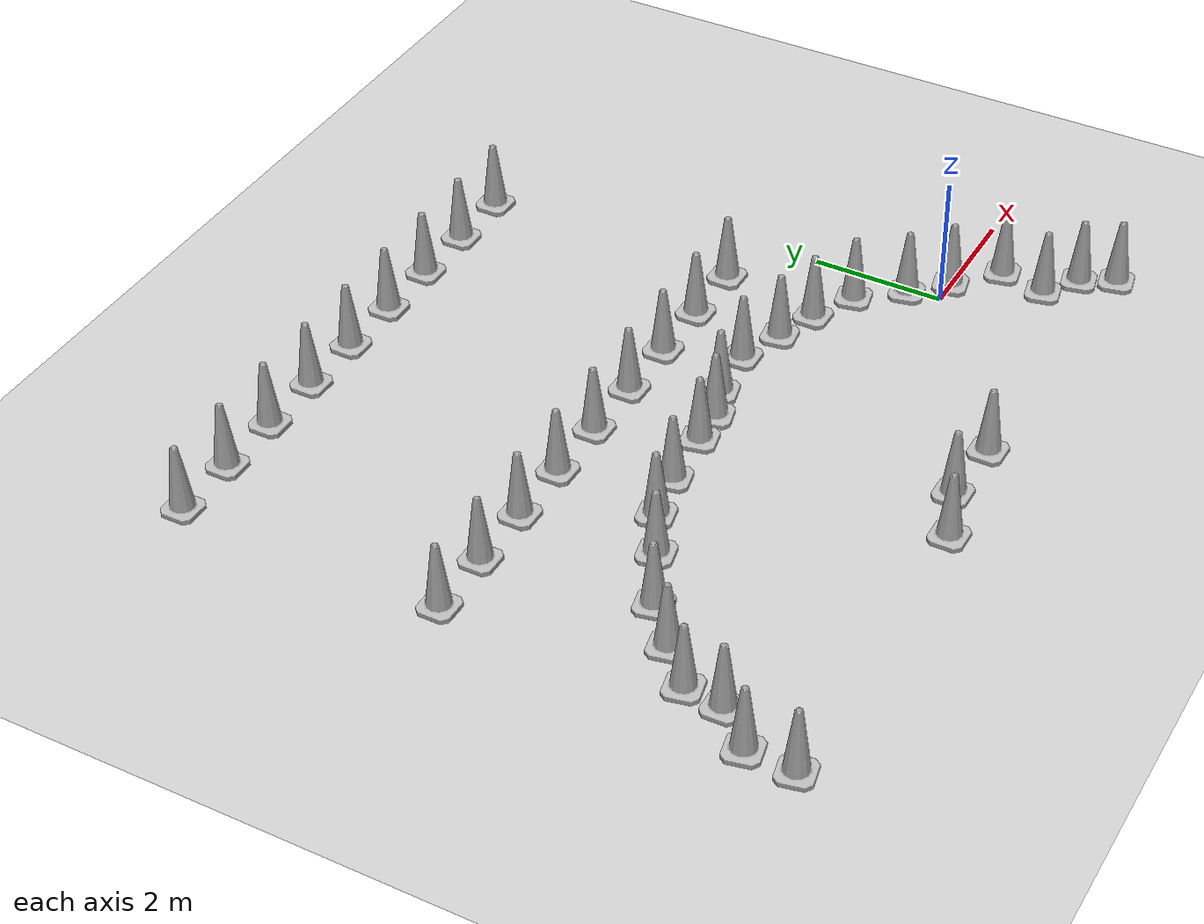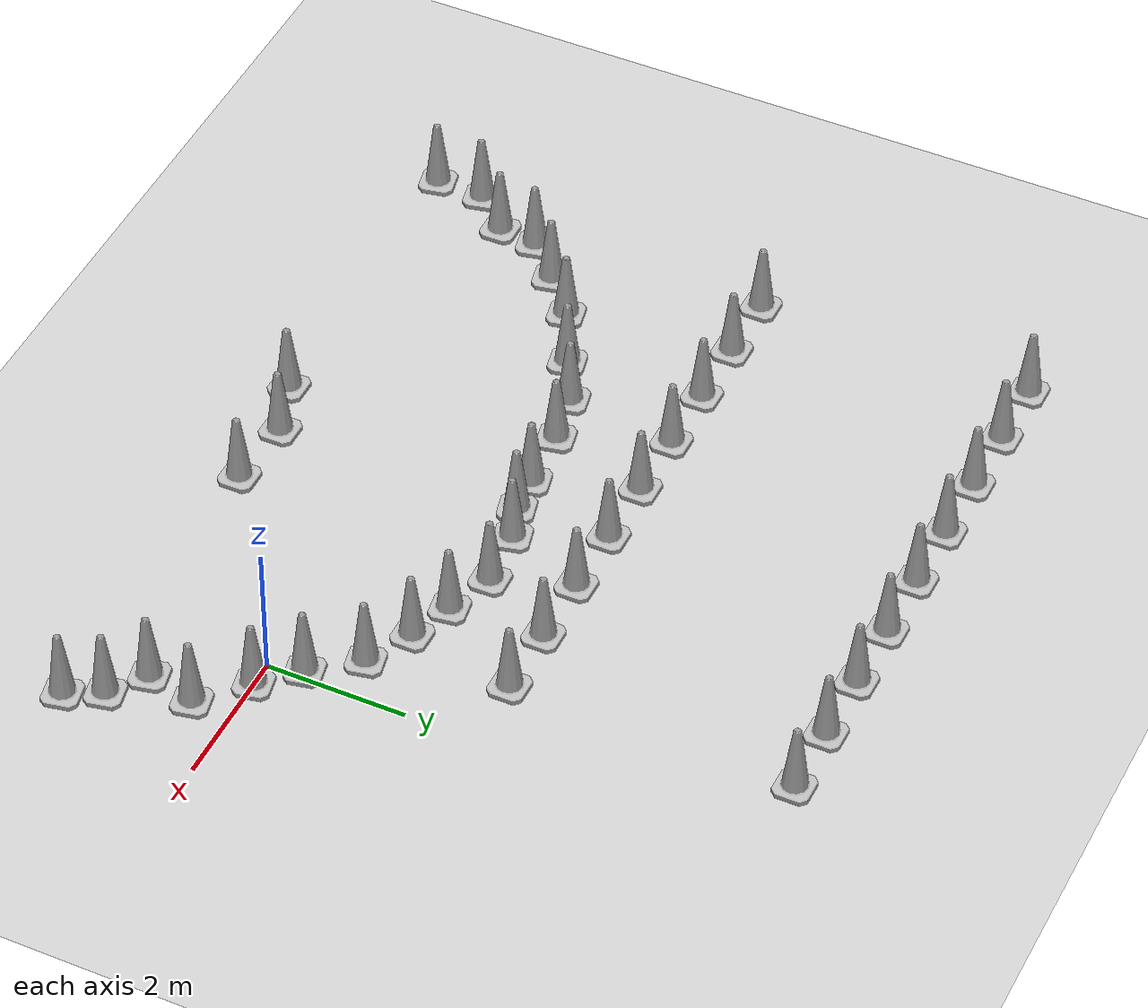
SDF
<sdf version="1.7">
 <world name="empty">
  <model name="ground_plane">
   <static>1</static>
   <link name="link">
    <collision name="collision">
     <geometry><plane><normal>0 0 1</normal><size>100 100</size></plane></geometry>
     <surface>
      <contact><collide_bitmask>65535</collide_bitmask></contact>
      <friction><ode><mu>100</mu><mu2>50</mu2></ode></friction>
     </surface>
    </collision>
    <visual name="visual">
     <cast_shadows>0</cast_shadows>
     <geometry><plane><normal>0 0 1</normal><size>100 100</size></plane></geometry>
     <material>
      <script><uri>file://media/materials/scripts/gazebo.material</uri><name>Gazebo/Grey</name></script>
     </material>
    </visual>
   </link>
  </model>
  <model name="Construction Cone">
   <link name="link">
    <collision name="collision">
     <geometry>
      <mesh><scale>10 10 10</scale><uri>model://construction_cone/meshes/construction_cone.dae</uri></mesh>
     </geometry>
    </collision>
    <visual name="visual">
     <geometry>
      <mesh><scale>10 10 10</scale><uri>model://construction_cone/meshes/construction_cone.dae</uri></mesh>
     </geometry>
    </visual>
    <inertial>
     <inertia><ixx>1</ixx><ixy>0</ixy><ixz>0</ixz><iyy>1</iyy><iyz>0</iyz><izz>1</izz></inertia>
     <mass>1</mass>
    </inertial>
   </link>
   <pose>-9 7 -0 0 -1e-06 0</pose>
  </model>
  <model name="Construction Cone_clone">
   <link name="link">
    <collision name="collision">
     <geometry>
      <mesh><scale>10 10 10</scale><uri>model://construction_cone/meshes/construction_cone.dae</uri></mesh>
     </geometry>
    </collision>
    <visual name="visual">
     <geometry>
      <mesh><scale>10 10 10</scale><uri>model://construction_cone/meshes/construction_cone.dae</uri></mesh>
     </geometry>
    </visual>
    <inertial>
     <inertia><ixx>1</ixx><ixy>0</ixy><ixz>0</ixz><iyy>1</iyy><iyz>0</iyz><izz>1</izz></inertia>
     <mass>1</mass>
    </inertial>
   </link>
   <pose>-9 3 -0 0 -1e-06 0</pose>
  </model>
  <model name="Construction Cone_clone_0">
   <link name="link">
    <collision name="collision">
     <geometry>
      <mesh><scale>10 10 10</scale><uri>model://construction_cone/meshes/construction_cone.dae</uri></mesh>
     </geometry>
    </collision>
    <visual name="visual">
     <geometry>
      <mesh><scale>10 10 10</scale><uri>model://construction_cone/meshes/construction_cone.dae</uri></mesh>
     </geometry>
    </visual>
    <inertial>
     <inertia><ixx>1</ixx><ixy>0</ixy><ixz>0</ixz><iyy>1</iyy><iyz>0</iyz><izz>1</izz></inertia>
     <mass>1</mass>
    </inertial>
   </link>
   <pose>-8 7 -0 0 -1e-06 0</pose>
  </model>
  <model name="Construction Cone_clone_1">
   <link name="link">
    <collision name="collision">
     <geometry>
      <mesh><scale>10 10 10</scale><uri>model://construction_cone/meshes/construction_cone.dae</uri></mesh>
     </geometry>
    </collision>
    <visual name="visual">
     <geometry>
      <mesh><scale>10 10 10</scale><uri>model://construction_cone/meshes/construction_cone.dae</uri></mesh>
     </geometry>
    </visual>
    <inertial>
     <inertia><ixx>1</ixx><ixy>0</ixy><ixz>0</ixz><iyy>1</iyy><iyz>0</iyz><izz>1</izz></inertia>
     <mass>1</mass>
    </inertial>
   </link>
   <pose>-7 7 -0 0 -1e-06 0</pose>
  </model>
  <model name="Construction Cone_clone_3">
   <link name="link">
    <collision name="collision">
     <geometry>
      <mesh><scale>10 10 10</scale><uri>model://construction_cone/meshes/construction_cone.dae</uri></mesh>
     </geometry>
    </collision>
    <visual name="visual">
     <geometry>
      <mesh><scale>10 10 10</scale><uri>model://construction_cone/meshes/construction_cone.dae</uri></mesh>
     </geometry>
    </visual>
    <inertial>
     <inertia><ixx>1</ixx><ixy>0</ixy><ixz>0</ixz><iyy>1</iyy><iyz>0</iyz><izz>1</izz></inertia>
     <mass>1</mass>
    </inertial>
   </link>
   <pose>-8 3 -0 0 -1e-06 0</pose>
  </model>
  <model name="Construction Cone_clone_7">
   <link name="link">
    <collision name="collision">
     <geometry>
      <mesh><scale>10 10 10</scale><uri>model://construction_cone/meshes/construction_cone.dae</uri></mesh>
     </geometry>
    </collision>
    <visual name="visual">
     <geometry>
      <mesh><scale>10 10 10</scale><uri>model://construction_cone/meshes/construction_cone.dae</uri></mesh>
     </geometry>
    </visual>
    <inertial>
     <inertia><ixx>1</ixx><ixy>0</ixy><ixz>0</ixz><iyy>1</iyy><iyz>0</iyz><izz>1</izz></inertia>
     <mass>1</mass>
    </inertial>
   </link>
   <pose>-6 7 -1e-05 -1e-06 0 0</pose>
  </model>
  <model name="Construction Cone_clone_8">
   <link name="link">
    <collision name="collision">
     <geometry>
      <mesh><scale>10 10 10</scale><uri>model://construction_cone/meshes/construction_cone.dae</uri></mesh>
     </geometry>
    </collision>
    <visual name="visual">
     <geometry>
      <mesh><scale>10 10 10</scale><uri>model://construction_cone/meshes/construction_cone.dae</uri></mesh>
     </geometry>
    </visual>
    <inertial>
     <inertia><ixx>1</ixx><ixy>0</ixy><ixz>0</ixz><iyy>1</iyy><iyz>0</iyz><izz>1</izz></inertia>
     <mass>1</mass>
    </inertial>
   </link>
   <pose>-5 7 -0 0 -1e-06 0</pose>
  </model>
  <model name="Construction Cone_clone_9">
   <link name="link">
    <collision name="collision">
     <geometry>
      <mesh><scale>10 10 10</scale><uri>model://construction_cone/meshes/construction_cone.dae</uri></mesh>
     </geometry>
    </collision>
    <visual name="visual">
     <geometry>
      <mesh><scale>10 10 10</scale><uri>model://construction_cone/meshes/construction_cone.dae</uri></mesh>
     </geometry>
    </visual>
    <inertial>
     <inertia><ixx>1</ixx><ixy>0</ixy><ixz>0</ixz><iyy>1</iyy><iyz>0</iyz><izz>1</izz></inertia>
     <mass>1</mass>
    </inertial>
   </link>
   <pose>-4 7 0 -1e-06 0 0</pose>
  </model>
  <model name="Construction Cone_clone_10">
   <link name="link">
    <collision name="collision">
     <geometry>
      <mesh><scale>10 10 10</scale><uri>model://construction_cone/meshes/construction_cone.dae</uri></mesh>
     </geometry>
    </collision>
    <visual name="visual">
     <geometry>
      <mesh><scale>10 10 10</scale><uri>model://construction_cone/meshes/construction_cone.dae</uri></mesh>
     </geometry>
    </visual>
    <inertial>
     <inertia><ixx>1</ixx><ixy>0</ixy><ixz>0</ixz><iyy>1</iyy><iyz>0</iyz><izz>1</izz></inertia>
     <mass>1</mass>
    </inertial>
   </link>
   <pose>-3 7 -0 0 -1e-06 0</pose>
  </model>
  <model name="Construction Cone_clone_11">
   <link name="link">
    <collision name="collision">
     <geometry>
      <mesh><scale>10 10 10</scale><uri>model://construction_cone/meshes/construction_cone.dae</uri></mesh>
     </geometry>
    </collision>
    <visual name="visual">
     <geometry>
      <mesh><scale>10 10 10</scale><uri>model://construction_cone/meshes/construction_cone.dae</uri></mesh>
     </geometry>
    </visual>
    <inertial>
     <inertia><ixx>1</ixx><ixy>0</ixy><ixz>0</ixz><iyy>1</iyy><iyz>0</iyz><izz>1</izz></inertia>
     <mass>1</mass>
    </inertial>
   </link>
   <pose>-3 3 -0 0 -1e-06 0</pose>
  </model>
  <model name="Construction Cone_clone_12">
   <link name="link">
    <collision name="collision">
     <geometry>
      <mesh><scale>10 10 10</scale><uri>model://construction_cone/meshes/construction_cone.dae</uri></mesh>
     </geometry>
    </collision>
    <visual name="visual">
     <geometry>
      <mesh><scale>10 10 10</scale><uri>model://construction_cone/meshes/construction_cone.dae</uri></mesh>
     </geometry>
    </visual>
    <inertial>
     <inertia><ixx>1</ixx><ixy>0</ixy><ixz>0</ixz><iyy>1</iyy><iyz>0</iyz><izz>1</izz></inertia>
     <mass>1</mass>
    </inertial>
   </link>
   <pose>-2 3 -0 0 -0 0</pose>
  </model>
  <model name="Construction Cone_clone_13">
   <link name="link">
    <collision name="collision">
     <geometry>
      <mesh><scale>10 10 10</scale><uri>model://construction_cone/meshes/construction_cone.dae</uri></mesh>
     </geometry>
    </collision>
    <visual name="visual">
     <geometry>
      <mesh><scale>10 10 10</scale><uri>model://construction_cone/meshes/construction_cone.dae</uri></mesh>
     </geometry>
    </visual>
    <inertial>
     <inertia><ixx>1</ixx><ixy>0</ixy><ixz>0</ixz><iyy>1</iyy><iyz>0</iyz><izz>1</izz></inertia>
     <mass>1</mass>
    </inertial>
   </link>
   <pose>-2 7 -0 0 -0 0</pose>
  </model>
  <model name="Construction Cone_clone_14">
   <link name="link">
    <collision name="collision">
     <geometry>
      <mesh><scale>10 10 10</scale><uri>model://construction_cone/meshes/construction_cone.dae</uri></mesh>
     </geometry>
    </collision>
    <visual name="visual">
     <geometry>
      <mesh><scale>10 10 10</scale><uri>model://construction_cone/meshes/construction_cone.dae</uri></mesh>
     </geometry>
    </visual>
    <inertial>
     <inertia><ixx>1</ixx><ixy>0</ixy><ixz>0</ixz><iyy>1</iyy><iyz>0</iyz><izz>1</izz></inertia>
     <mass>1</mass>
    </inertial>
   </link>
   <pose>-1 7 -0 0 -1e-06 0</pose>
  </model>
  <model name="Construction Cone_clone_15">
   <link name="link">
    <collision name="collision">
     <geometry>
      <mesh><scale>10 10 10</scale><uri>model://construction_cone/meshes/construction_cone.dae</uri></mesh>
     </geometry>
    </collision>
    <visual name="visual">
     <geometry>
      <mesh><scale>10 10 10</scale><uri>model://construction_cone/meshes/construction_cone.dae</uri></mesh>
     </geometry>
    </visual>
    <inertial>
     <inertia><ixx>1</ixx><ixy>0</ixy><ixz>0</ixz><iyy>1</iyy><iyz>0</iyz><izz>1</izz></inertia>
     <mass>1</mass>
    </inertial>
   </link>
   <pose>-1 3 -0 0 -1e-06 0</pose>
  </model>
  <model name="Construction Cone_clone_17">
   <link name="link">
    <collision name="collision">
     <geometry>
      <mesh><scale>10 10 10</scale><uri>model://construction_cone/meshes/construction_cone.dae</uri></mesh>
     </geometry>
    </collision>
    <visual name="visual">
     <geometry>
      <mesh><scale>10 10 10</scale><uri>model://construction_cone/meshes/construction_cone.dae</uri></mesh>
     </geometry>
    </visual>
    <inertial>
     <inertia><ixx>1</ixx><ixy>0</ixy><ixz>0</ixz><iyy>1</iyy><iyz>0</iyz><izz>1</izz></inertia>
     <mass>1</mass>
    </inertial>
   </link>
   <pose>-3.92107 -1.88779 -0 0 -0 0.002196</pose>
  </model>
  <model name="Construction Cone_clone_20">
   <link name="link">
    <collision name="collision">
     <geometry>
      <mesh><scale>10 10 10</scale><uri>model://construction_cone/meshes/construction_cone.dae</uri></mesh>
     </geometry>
    </collision>
    <visual name="visual">
     <geometry>
      <mesh><scale>10 10 10</scale><uri>model://construction_cone/meshes/construction_cone.dae</uri></mesh>
     </geometry>
    </visual>
    <inertial>
     <inertia><ixx>1</ixx><ixy>0</ixy><ixz>0</ixz><iyy>1</iyy><iyz>0</iyz><izz>1</izz></inertia>
     <mass>1</mass>
    </inertial>
   </link>
   <pose>-2.61076 1.92981 -0 -0 -1e-06 0.029847</pose>
  </model>
  <model name="Construction Cone_clone_33">
   <link name="link">
    <collision name="collision">
     <geometry>
      <mesh><scale>10 10 10</scale><uri>model://construction_cone/meshes/construction_cone.dae</uri></mesh>
     </geometry>
    </collision>
    <visual name="visual">
     <geometry>
      <mesh><scale>10 10 10</scale><uri>model://construction_cone/meshes/construction_cone.dae</uri></mesh>
     </geometry>
    </visual>
    <inertial>
     <inertia><ixx>1</ixx><ixy>0</ixy><ixz>0</ixz><iyy>1</iyy><iyz>0</iyz><izz>1</izz></inertia>
     <mass>1</mass>
    </inertial>
   </link>
   <pose>-1.91574 1.68243 -0 0 -1e-06 0.152894</pose>
  </model>
  <model name="Construction Cone_clone_35">
   <link name="link">
    <collision name="collision">
     <geometry>
      <mesh><scale>10 10 10</scale><uri>model://construction_cone/meshes/construction_cone.dae</uri></mesh>
     </geometry>
    </collision>
    <visual name="visual">
     <geometry>
      <mesh><scale>10 10 10</scale><uri>model://construction_cone/meshes/construction_cone.dae</uri></mesh>
     </geometry>
    </visual>
    <inertial>
     <inertia><ixx>1</ixx><ixy>0</ixy><ixz>0</ixz><iyy>1</iyy><iyz>0</iyz><izz>1</izz></inertia>
     <mass>1</mass>
    </inertial>
   </link>
   <pose>-1.27313 1.45906 -0 -0 -1e-06 0.000419</pose>
  </model>
  <model name="Construction Cone_clone_59">
   <link name="link">
    <collision name="collision">
     <geometry>
      <mesh><scale>10 10 10</scale><uri>model://construction_cone/meshes/construction_cone.dae</uri></mesh>
     </geometry>
    </collision>
    <visual name="visual">
     <geometry>
      <mesh><scale>10 10 10</scale><uri>model://construction_cone/meshes/construction_cone.dae</uri></mesh>
     </geometry>
    </visual>
    <inertial>
     <inertia><ixx>1</ixx><ixy>0</ixy><ixz>0</ixz><iyy>1</iyy><iyz>0</iyz><izz>1</izz></inertia>
     <mass>1</mass>
    </inertial>
   </link>
   <pose>-4.51183 1.61968 -0 -0 -1e-06 0.206225</pose>
  </model>
  <model name="Construction Cone_clone_61">
   <link name="link">
    <collision name="collision">
     <geometry>
      <mesh><scale>10 10 10</scale><uri>model://construction_cone/meshes/construction_cone.dae</uri></mesh>
     </geometry>
    </collision>
    <visual name="visual">
     <geometry>
      <mesh><scale>10 10 10</scale><uri>model://construction_cone/meshes/construction_cone.dae</uri></mesh>
     </geometry>
    </visual>
    <inertial>
     <inertia><ixx>1</ixx><ixy>0</ixy><ixz>0</ixz><iyy>1</iyy><iyz>0</iyz><izz>1</izz></inertia>
     <mass>1</mass>
    </inertial>
   </link>
   <pose>-2.89241 -1.9618 -0 -0 -0 -0</pose>
  </model>
  <model name="Construction Cone_clone_63">
   <link name="link">
    <collision name="collision">
     <geometry>
      <mesh><scale>10 10 10</scale><uri>model://construction_cone/meshes/construction_cone.dae</uri></mesh>
     </geometry>
    </collision>
    <visual name="visual">
     <geometry>
      <mesh><scale>10 10 10</scale><uri>model://construction_cone/meshes/construction_cone.dae</uri></mesh>
     </geometry>
    </visual>
    <inertial>
     <inertia><ixx>1</ixx><ixy>0</ixy><ixz>0</ixz><iyy>1</iyy><iyz>0</iyz><izz>1</izz></inertia>
     <mass>1</mass>
    </inertial>
   </link>
   <pose>-4.73181 -2.1814 -0 0 -1e-06 0.002576</pose>
  </model>
  <model name="Construction Cone_clone_59_clone">
   <link name="link">
    <collision name="collision">
     <geometry>
      <mesh><scale>10 10 10</scale><uri>model://construction_cone/meshes/construction_cone.dae</uri></mesh>
     </geometry>
    </collision>
    <visual name="visual">
     <geometry>
      <mesh><scale>10 10 10</scale><uri>model://construction_cone/meshes/construction_cone.dae</uri></mesh>
     </geometry>
    </visual>
    <inertial>
     <inertia><ixx>1</ixx><ixy>0</ixy><ixz>0</ixz><iyy>1</iyy><iyz>0</iyz><izz>1</izz></inertia>
     <mass>1</mass>
    </inertial>
   </link>
   <pose>-5.40428 1.55794 -8e-06 1e-06 -0 0.206225</pose>
  </model>
  <model name="Construction Cone_clone_59_clone_0">
   <link name="link">
    <collision name="collision">
     <geometry>
      <mesh><scale>10 10 10</scale><uri>model://construction_cone/meshes/construction_cone.dae</uri></mesh>
     </geometry>
    </collision>
    <visual name="visual">
     <geometry>
      <mesh><scale>10 10 10</scale><uri>model://construction_cone/meshes/construction_cone.dae</uri></mesh>
     </geometry>
    </visual>
    <inertial>
     <inertia><ixx>1</ixx><ixy>0</ixy><ixz>0</ixz><iyy>1</iyy><iyz>0</iyz><izz>1</izz></inertia>
     <mass>1</mass>
    </inertial>
   </link>
   <pose>-0.599827 1.12459 -0 -0 -1e-06 0.206225</pose>
  </model>
  <model name="Construction Cone_clone_59_clone_1">
   <link name="link">
    <collision name="collision">
     <geometry>
      <mesh><scale>10 10 10</scale><uri>model://construction_cone/meshes/construction_cone.dae</uri></mesh>
     </geometry>
    </collision>
    <visual name="visual">
     <geometry>
      <mesh><scale>10 10 10</scale><uri>model://construction_cone/meshes/construction_cone.dae</uri></mesh>
     </geometry>
    </visual>
    <inertial>
     <inertia><ixx>1</ixx><ixy>0</ixy><ixz>0</ixz><iyy>1</iyy><iyz>0</iyz><izz>1</izz></inertia>
     <mass>1</mass>
    </inertial>
   </link>
   <pose>-0.106114 0.495019 -1e-05 0 -0 0.206225</pose>
  </model>
  <model name="Construction Cone_clone_30_clone">
   <link name="link">
    <collision name="collision">
     <geometry>
      <mesh><scale>10 10 10</scale><uri>model://construction_cone/meshes/construction_cone.dae</uri></mesh>
     </geometry>
    </collision>
    <visual name="visual">
     <geometry>
      <mesh><scale>10 10 10</scale><uri>model://construction_cone/meshes/construction_cone.dae</uri></mesh>
     </geometry>
    </visual>
    <inertial>
     <inertia><ixx>1</ixx><ixy>0</ixy><ixz>0</ixz><iyy>1</iyy><iyz>0</iyz><izz>1</izz></inertia>
     <mass>1</mass>
    </inertial>
   </link>
   <pose>-8.88633 -0.991657 -0 0 -1e-06 0.015434</pose>
  </model>
  <model name="Construction Cone_clone_59_clone_clone">
   <link name="link">
    <collision name="collision">
     <geometry>
      <mesh><scale>10 10 10</scale><uri>model://construction_cone/meshes/construction_cone.dae</uri></mesh>
     </geometry>
    </collision>
    <visual name="visual">
     <geometry>
      <mesh><scale>10 10 10</scale><uri>model://construction_cone/meshes/construction_cone.dae</uri></mesh>
     </geometry>
    </visual>
    <inertial>
     <inertia><ixx>1</ixx><ixy>0</ixy><ixz>0</ixz><iyy>1</iyy><iyz>0</iyz><izz>1</izz></inertia>
     <mass>1</mass>
    </inertial>
   </link>
   <pose>-6.1573 1.40512 -0 -0 -1e-06 0.206225</pose>
  </model>
  <model name="Construction Cone_clone_59_clone_clone_0">
   <link name="link">
    <collision name="collision">
     <geometry>
      <mesh><scale>10 10 10</scale><uri>model://construction_cone/meshes/construction_cone.dae</uri></mesh>
     </geometry>
    </collision>
    <visual name="visual">
     <geometry>
      <mesh><scale>10 10 10</scale><uri>model://construction_cone/meshes/construction_cone.dae</uri></mesh>
     </geometry>
    </visual>
    <inertial>
     <inertia><ixx>1</ixx><ixy>0</ixy><ixz>0</ixz><iyy>1</iyy><iyz>0</iyz><izz>1</izz></inertia>
     <mass>1</mass>
    </inertial>
   </link>
   <pose>-6.82166 1.04752 -0 -0 -1e-06 0.206225</pose>
  </model>
  <model name="Construction Cone_clone_59_clone_clone_1">
   <link name="link">
    <collision name="collision">
     <geometry>
      <mesh><scale>10 10 10</scale><uri>model://construction_cone/meshes/construction_cone.dae</uri></mesh>
     </geometry>
    </collision>
    <visual name="visual">
     <geometry>
      <mesh><scale>10 10 10</scale><uri>model://construction_cone/meshes/construction_cone.dae</uri></mesh>
     </geometry>
    </visual>
    <inertial>
     <inertia><ixx>1</ixx><ixy>0</ixy><ixz>0</ixz><iyy>1</iyy><iyz>0</iyz><izz>1</izz></inertia>
     <mass>1</mass>
    </inertial>
   </link>
   <pose>-7.68992 0.613223 -0 -0 -1e-06 0.206225</pose>
  </model>
  <model name="Construction Cone_clone_59_clone_clone_2">
   <link name="link">
    <collision name="collision">
     <geometry>
      <mesh><scale>10 10 10</scale><uri>model://construction_cone/meshes/construction_cone.dae</uri></mesh>
     </geometry>
    </collision>
    <visual name="visual">
     <geometry>
      <mesh><scale>10 10 10</scale><uri>model://construction_cone/meshes/construction_cone.dae</uri></mesh>
     </geometry>
    </visual>
    <inertial>
     <inertia><ixx>1</ixx><ixy>0</ixy><ixz>0</ixz><iyy>1</iyy><iyz>0</iyz><izz>1</izz></inertia>
     <mass>1</mass>
    </inertial>
   </link>
   <pose>-8.27759 0.102404 -0 0 -0 0.206225</pose>
  </model>
  <model name="Construction Cone_clone_59_clone_clone_3">
   <link name="link">
    <collision name="collision">
     <geometry>
      <mesh><scale>10 10 10</scale><uri>model://construction_cone/meshes/construction_cone.dae</uri></mesh>
     </geometry>
    </collision>
    <visual name="visual">
     <geometry>
      <mesh><scale>10 10 10</scale><uri>model://construction_cone/meshes/construction_cone.dae</uri></mesh>
     </geometry>
    </visual>
    <inertial>
     <inertia><ixx>1</ixx><ixy>0</ixy><ixz>0</ixz><iyy>1</iyy><iyz>0</iyz><izz>1</izz></inertia>
     <mass>1</mass>
    </inertial>
   </link>
   <pose>-8.81392 -0.408497 -8e-06 1e-06 -0 0.206225</pose>
  </model>
  <model name="Construction Cone_clone_59_clone_clone_4">
   <link name="link">
    <collision name="collision">
     <geometry>
      <mesh><scale>10 10 10</scale><uri>model://construction_cone/meshes/construction_cone.dae</uri></mesh>
     </geometry>
    </collision>
    <visual name="visual">
     <geometry>
      <mesh><scale>10 10 10</scale><uri>model://construction_cone/meshes/construction_cone.dae</uri></mesh>
     </geometry>
    </visual>
    <inertial>
     <inertia><ixx>1</ixx><ixy>0</ixy><ixz>0</ixz><iyy>1</iyy><iyz>0</iyz><izz>1</izz></inertia>
     <mass>1</mass>
    </inertial>
   </link>
   <pose>-9.40143 -1.53258 -0 -0 -1e-06 0.206225</pose>
  </model>
  <model name="Construction Cone_clone_59_clone_clone_5">
   <link name="link">
    <collision name="collision">
     <geometry>
      <mesh><scale>10 10 10</scale><uri>model://construction_cone/meshes/construction_cone.dae</uri></mesh>
     </geometry>
    </collision>
    <visual name="visual">
     <geometry>
      <mesh><scale>10 10 10</scale><uri>model://construction_cone/meshes/construction_cone.dae</uri></mesh>
     </geometry>
    </visual>
    <inertial>
     <inertia><ixx>1</ixx><ixy>0</ixy><ixz>0</ixz><iyy>1</iyy><iyz>0</iyz><izz>1</izz></inertia>
     <mass>1</mass>
    </inertial>
   </link>
   <pose>-9.4271 -2.24779 -0 -0 -1e-06 0.206225</pose>
  </model>
  <model name="Construction Cone_clone_59_clone_clone_11">
   <link name="link">
    <collision name="collision">
     <geometry>
      <mesh><scale>10 10 10</scale><uri>model://construction_cone/meshes/construction_cone.dae</uri></mesh>
     </geometry>
    </collision>
    <visual name="visual">
     <geometry>
      <mesh><scale>10 10 10</scale><uri>model://construction_cone/meshes/construction_cone.dae</uri></mesh>
     </geometry>
    </visual>
    <inertial>
     <inertia><ixx>1</ixx><ixy>0</ixy><ixz>0</ixz><iyy>1</iyy><iyz>0</iyz><izz>1</izz></inertia>
     <mass>1</mass>
    </inertial>
   </link>
   <pose>1.58624 -2.13001 -0 0 -0 0.206225</pose>
  </model>
  <model name="Construction Cone_clone_59_clone_clone_12">
   <link name="link">
    <collision name="collision">
     <geometry>
      <mesh><scale>10 10 10</scale><uri>model://construction_cone/meshes/construction_cone.dae</uri></mesh>
     </geometry>
    </collision>
    <visual name="visual">
     <geometry>
      <mesh><scale>10 10 10</scale><uri>model://construction_cone/meshes/construction_cone.dae</uri></mesh>
     </geometry>
    </visual>
    <inertial>
     <inertia><ixx>1</ixx><ixy>0</ixy><ixz>0</ixz><iyy>1</iyy><iyz>0</iyz><izz>1</izz></inertia>
     <mass>1</mass>
    </inertial>
   </link>
   <pose>1.34409 -1.63494 -0 -0 -1e-06 0.207821</pose>
  </model>
  <model name="Construction Cone_clone_59_clone_clone_13">
   <link name="link">
    <collision name="collision">
     <geometry>
      <mesh><scale>10 10 10</scale><uri>model://construction_cone/meshes/construction_cone.dae</uri></mesh>
     </geometry>
    </collision>
    <visual name="visual">
     <geometry>
      <mesh><scale>10 10 10</scale><uri>model://construction_cone/meshes/construction_cone.dae</uri></mesh>
     </geometry>
    </visual>
    <inertial>
     <inertia><ixx>1</ixx><ixy>0</ixy><ixz>0</ixz><iyy>1</iyy><iyz>0</iyz><izz>1</izz></inertia>
     <mass>1</mass>
    </inertial>
   </link>
   <pose>0.835369 -1.2692 -0 -0 -1e-06 0.211317</pose>
  </model>
  <model name="Construction Cone_clone_59_clone_clone_15">
   <link name="link">
    <collision name="collision">
     <geometry>
      <mesh><scale>10 10 10</scale><uri>model://construction_cone/meshes/construction_cone.dae</uri></mesh>
     </geometry>
    </collision>
    <visual name="visual">
     <geometry>
      <mesh><scale>10 10 10</scale><uri>model://construction_cone/meshes/construction_cone.dae</uri></mesh>
     </geometry>
    </visual>
    <inertial>
     <inertia><ixx>1</ixx><ixy>0</ixy><ixz>0</ixz><iyy>1</iyy><iyz>0</iyz><izz>1</izz></inertia>
     <mass>1</mass>
    </inertial>
   </link>
   <pose>0.383157 0.008766 -0 -0 -1e-06 0.206225</pose>
  </model>
  <model name="Construction Cone_clone_59_clone_clone_16">
   <link name="link">
    <collision name="collision">
     <geometry>
      <mesh><scale>10 10 10</scale><uri>model://construction_cone/meshes/construction_cone.dae</uri></mesh>
     </geometry>
    </collision>
    <visual name="visual">
     <geometry>
      <mesh><scale>10 10 10</scale><uri>model://construction_cone/meshes/construction_cone.dae</uri></mesh>
     </geometry>
    </visual>
    <inertial>
     <inertia><ixx>1</ixx><ixy>0</ixy><ixz>0</ixz><iyy>1</iyy><iyz>0</iyz><izz>1</izz></inertia>
     <mass>1</mass>
    </inertial>
   </link>
   <pose>0.994217 -0.564096 -1e-05 0 -0 0.206225</pose>
  </model>
  <model name="Construction Cone_clone_59_clone_clone_14">
   <link name="link">
    <collision name="collision">
     <geometry>
      <mesh><scale>10 10 10</scale><uri>model://construction_cone/meshes/construction_cone.dae</uri></mesh>
     </geometry>
    </collision>
    <visual name="visual">
     <geometry>
      <mesh><scale>10 10 10</scale><uri>model://construction_cone/meshes/construction_cone.dae</uri></mesh>
     </geometry>
    </visual>
    <inertial>
     <inertia><ixx>1</ixx><ixy>0</ixy><ixz>0</ixz><iyy>1</iyy><iyz>0</iyz><izz>1</izz></inertia>
     <mass>1</mass>
    </inertial>
   </link>
   <pose>-3.45128 1.84926 -0 0 -0 0.23894</pose>
  </model>
  <model name="Construction Cone_clone_59_clone_clone_17">
   <link name="link">
    <collision name="collision">
     <geometry>
      <mesh><scale>10 10 10</scale><uri>model://construction_cone/meshes/construction_cone.dae</uri></mesh>
     </geometry>
    </collision>
    <visual name="visual">
     <geometry>
      <mesh><scale>10 10 10</scale><uri>model://construction_cone/meshes/construction_cone.dae</uri></mesh>
     </geometry>
    </visual>
    <inertial>
     <inertia><ixx>1</ixx><ixy>0</ixy><ixz>0</ixz><iyy>1</iyy><iyz>0</iyz><izz>1</izz></inertia>
     <mass>1</mass>
    </inertial>
   </link>
   <pose>-3.95404 1.66832 -0 0 -1e-06 0.241567</pose>
  </model>
  <model name="Construction Cone_clone_3_clone">
   <link name="link">
    <collision name="collision">
     <geometry>
      <mesh><scale>10 10 10</scale><uri>model://construction_cone/meshes/construction_cone.dae</uri></mesh>
     </geometry>
    </collision>
    <visual name="visual">
     <geometry>
      <mesh><scale>10 10 10</scale><uri>model://construction_cone/meshes/construction_cone.dae</uri></mesh>
     </geometry>
    </visual>
    <inertial>
     <inertia><ixx>1</ixx><ixy>0</ixy><ixz>0</ixz><iyy>1</iyy><iyz>0</iyz><izz>1</izz></inertia>
     <mass>1</mass>
    </inertial>
   </link>
   <pose>-7 3 -0 0 -0 0</pose>
  </model>
  <model name="Construction Cone_clone_3_clone_clone_0">
   <link name="link">
    <collision name="collision">
     <geometry>
      <mesh><scale>10 10 10</scale><uri>model://construction_cone/meshes/construction_cone.dae</uri></mesh>
     </geometry>
    </collision>
    <visual name="visual">
     <geometry>
      <mesh><scale>10 10 10</scale><uri>model://construction_cone/meshes/construction_cone.dae</uri></mesh>
     </geometry>
    </visual>
    <inertial>
     <inertia><ixx>1</ixx><ixy>0</ixy><ixz>0</ixz><iyy>1</iyy><iyz>0</iyz><izz>1</izz></inertia>
     <mass>1</mass>
    </inertial>
   </link>
   <pose>-5 3 -0 0 -0 0</pose>
  </model>
  <model name="Construction Cone_clone_3_clone_clone">
   <link name="link">
    <collision name="collision">
     <geometry>
      <mesh><scale>10 10 10</scale><uri>model://construction_cone/meshes/construction_cone.dae</uri></mesh>
     </geometry>
    </collision>
    <visual name="visual">
     <geometry>
      <mesh><scale>10 10 10</scale><uri>model://construction_cone/meshes/construction_cone.dae</uri></mesh>
     </geometry>
    </visual>
    <inertial>
     <inertia><ixx>1</ixx><ixy>0</ixy><ixz>0</ixz><iyy>1</iyy><iyz>0</iyz><izz>1</izz></inertia>
     <mass>1</mass>
    </inertial>
   </link>
   <pose>-6 3 -0 0 -1e-06 0</pose>
  </model>
  <model name="Construction Cone_clone_3_clone_clone_1">
   <link name="link">
    <collision name="collision">
     <geometry>
      <mesh><scale>10 10 10</scale><uri>model://construction_cone/meshes/construction_cone.dae</uri></mesh>
     </geometry>
    </collision>
    <visual name="visual">
     <geometry>
      <mesh><scale>10 10 10</scale><uri>model://construction_cone/meshes/construction_cone.dae</uri></mesh>
     </geometry>
    </visual>
    <inertial>
     <inertia><ixx>1</ixx><ixy>0</ixy><ixz>0</ixz><iyy>1</iyy><iyz>0</iyz><izz>1</izz></inertia>
     <mass>1</mass>
    </inertial>
   </link>
   <pose>-4 3 -0 0 -1e-06 0</pose>
  </model>
 </world>
</sdf>
